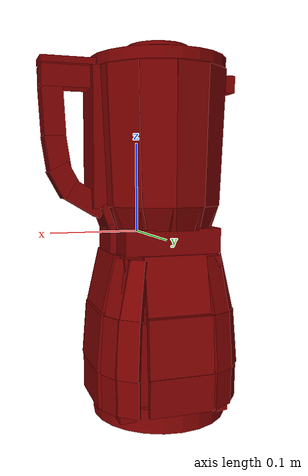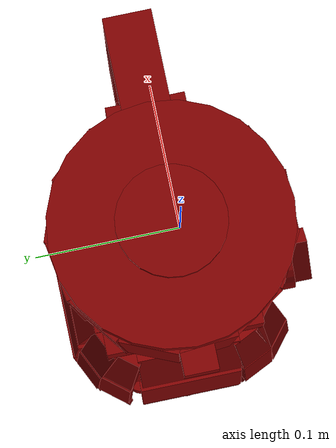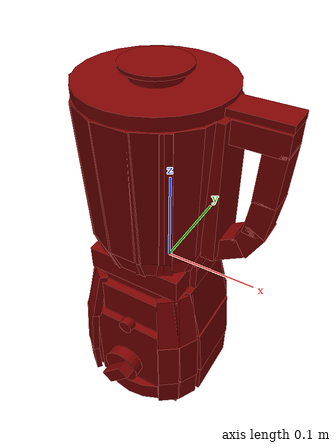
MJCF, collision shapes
<?xml version='1.0' encoding='UTF-8'?>
<mujoco model="model">
  <option timestep="0.002" gravity="0.0 0.0 -9.81"/>
  <compiler angle="radian"/>
  <asset>
    <mesh file="visuals/Blade001.obj" name="Blade001_vis"/>
    <mesh file="visuals/Body001.obj" name="Body001_vis"/>
    <mesh file="visuals/Body002.obj" name="Body002_vis"/>
    <mesh file="visuals/Button001.obj" name="Button001_vis"/>
    <mesh file="visuals/Jug001.obj" name="Jug001_vis"/>
    <mesh file="visuals/Jug001_Clear.obj" name="Jug001_Clear_vis"/>
    <mesh file="visuals/Knob001.obj" name="Knob001_vis"/>
    <mesh file="visuals/Lid001.obj" name="Lid001_vis"/>
    <texture file="visuals/T_BC001.png" name="Body001_material" type="2d"/>
    <material name="Body001_material" rgba="1 1 1 1.0" texture="Body001_material" shininess="0.141421377658844" specular="2"/>
    <texture file="visuals/T_BC001.png" name="Body002_material" type="2d"/>
    <material name="Body002_material" rgba="1 1 1 1.0" texture="Body002_material" shininess="0.141421377658844" specular="0.3103448502657381"/>
    <texture file="visuals/T_BC001.png" name="Button001_material" type="2d"/>
    <material name="Button001_material" rgba="1 1 1 1.0" texture="Button001_material" shininess="0.141421377658844" specular="0.3103448502657381"/>
    <texture file="visuals/T_BC001.png" name="Jug001_material" type="2d"/>
    <material name="Jug001_material" rgba="1 1 1 1.0" texture="Jug001_material" shininess="0.141421377658844" specular="0.3103448502657381"/>
    <texture file="visuals/T_BC001.png" name="Blade001_material" type="2d"/>
    <material name="Blade001_material" rgba="1 1 1 1.0" texture="Blade001_material" shininess="0.141421377658844" specular="1"/>
    <texture file="visuals/T_BC001.png" name="Jug001_Clear_material" type="2d"/>
    <material name="Jug001_Clear_material" rgba="1 1 1 0.75" texture="Jug001_Clear_material" shininess="0.141421377658844" specular="0.3103448502657381"/>
    <texture file="visuals/T_BC001.png" name="Lid001_material" type="2d"/>
    <material name="Lid001_material" rgba="1 1 1 1.0" texture="Lid001_material" shininess="0.141421377658844" specular="0.3103448502657381"/>
    <texture file="visuals/T_BC001.png" name="Knob001_material" type="2d"/>
    <material name="Knob001_material" rgba="1 1 1 1.0" texture="Knob001_material" shininess="0.141421377658844" specular="0.3103448502657381"/>
  </asset>
  <default>
    <default class="visual">
      <geom conaffinity="0" contype="0" group="1" type="mesh"/>
    </default>
    <default class="collision">
      <geom group="0" rgba="0.5 0 0 0.5"/>
    </default>
    <default class="spawn">
      <geom group="0" rgba="1 1 1 0.5" contype="0" conaffinity="0"/>
      <site group="0" rgba="1 1 1 0.5"/>
    </default>
    <default class="region">
      <geom group="1" conaffinity="0" contype="0" rgba="0 1 0 0"/>
    </default>
  </default>
  <worldbody>
    <body>
      <body name="object">
        <geom mesh="Body001_vis" type="mesh" solimp="0.998 0.998 0.001" solref="0.001 1" friction="0.95 0.3 0.1" class="visual" material="Body001_material"/>
        <geom class="collision" type="box" pos="-0.02125324 0.01088133 -0.14401975" size="0.06211252138018608 0.06211252138018608 0.052844371646642685" quat="1.0 0.0 0.0 0.0"/>
        <geom class="collision" type="box" pos="-0.08522475 0.01088133 -0.05209513" size="0.004011073149740696 0.035763565450906754 0.03144948557019234" quat="0.9938421845436096 0.0 0.11080476641654968 0.0"/>
        <geom class="collision" type="box" pos="-0.02125324 0.01253169 -0.05272835" size="0.05449920892715454 0.05350630357861519 0.029757967218756676" quat="1.0 0.0 0.0 0.0"/>
        <geom class="collision" type="box" pos="0.04336062 0.01172738 -0.05192510" size="0.003840292803943157 0.03641745075583458 0.031449493020772934" quat="7.503300025746285e-08 0.9938421845436096 -8.365526937836876e-09 0.11080476641654968"/>
        <geom class="collision" type="box" pos="-0.02137183 0.07543114 -0.05196477" size="0.0029528222512453794 0.03522942587733269 0.03144948557019234" quat="0.7027524709701538 0.07835067808628082 0.07835064828395844 -0.7027526497840881"/>
        <geom class="collision" type="box" pos="0.05458872 0.01172737 -0.11592519" size="0.002964968793094158 0.03641745075583458 0.031449493020772934" quat="7.506496757514469e-08 0.9992311000823975 6.5941954119352886e-09 0.03920683637261391"/>
        <geom class="collision" type="box" pos="0.05630803 0.01172737 -0.16708601" size="0.002594196703284979 0.036417338997125626 0.02055985853075981" quat="1.0 0.0 0.0 0.0"/>
        <geom class="collision" type="box" pos="-0.09705162 0.01172737 -0.11587368" size="0.003622443415224552 0.03641745075583458 0.031449493020772934" quat="0.03920678049325943 1.598352383780366e-07 -0.9992311000823975 -6.90521915203135e-08"/>
        <geom class="collision" type="box" pos="-0.09870201 0.01172737 -0.16709734" size="0.0027845080476254225 0.03641745075583458 0.020521236583590508" quat="0.00966708268970251 -1.6364300847726554e-07 0.9999532699584961 7.706934468387772e-08"/>
        <geom class="collision" type="box" pos="-0.02277744 0.08483383 -0.11601748" size="0.00343827111646533 0.03641745075583458 0.031449493020772934" quat="0.02772333472967148 -0.7065629363059998 -0.7065632939338684 -0.02772342599928379"/>
        <geom class="collision" type="box" pos="-0.02277743 0.08838206 -0.16709867" size="0.002852672478184104 0.03641745075583458 0.020521236583590508" quat="0.006835713982582092 0.7070736289024353 0.7070738673210144 -0.006835605949163437"/>
        <geom class="collision" type="box" pos="-0.08153833 -0.03278234 -0.05465136" size="0.004589538089931011 0.01190786249935627 0.031449489295482635" quat="0.9695470929145813 -0.02435024455189705 0.10809601098299026 0.21840497851371765"/>
        <geom class="collision" type="box" pos="-0.09143177 -0.03704512 -0.11586512" size="0.0037317133974283934 0.01212557777762413 0.031449493020772934" quat="0.03824836015701294 0.21958929300308228 -0.9748042821884155 0.008615943603217602"/>
        <geom class="collision" type="box" pos="-0.09264193 -0.03761946 -0.16709344" size="0.002582535147666931 0.01212557777762413 0.02052123472094536" quat="0.009430748410522938 -0.21974815428256989 0.9755087494850159 0.002124496502801776"/>
        <geom class="collision" type="box" pos="-0.07010913 -0.04668819 -0.05502695" size="0.0046595120802521706 0.01190786249935627 0.031449489295482635" quat="0.8976986408233643 -0.04754544049501419 0.10008556395769119 0.42644986510276794"/>
        <geom class="collision" type="box" pos="-0.07722282 -0.05479773 -0.11599470" size="0.003853235626593232 0.012125578708946705 0.031449493020772934" quat="0.03541398048400879 0.42876216769218445 -0.9025662541389465 0.01682324893772602"/>
        <geom class="collision" type="box" pos="-0.07845487 -0.05630942 -0.16707337" size="0.00331959524191916 0.012125578708946705 0.02052123472094536" quat="0.008731864392757416 -0.42907196283340454 0.9032185673713684 0.004148136358708143"/>
        <geom class="collision" type="box" pos="-0.06738924 0.06945065 -0.05475115" size="0.004136456176638603 0.01190786249935627 0.031449489295482635" quat="0.8400089740753174 0.05921720340847969 0.09365364164113998 -0.5311377048492432"/>
        <geom class="collision" type="box" pos="-0.07167629 0.07939523 -0.11589541" size="0.003345175413414836 0.01212557777762413 0.031449493020772934" quat="0.03313807025551796 -0.5340174436569214 -0.844563901424408 -0.020953278988599777"/>
        <geom class="collision" type="box" pos="-0.07241449 0.08095062 -0.16709338" size="0.0025793202221393585 0.012125578708946705 0.02052123472094536" quat="0.008170791901648045 0.5344034433364868 0.845174252986908 -0.005166299641132355"/>
        <geom class="collision" type="box" pos="-0.08074240 0.05781584 -0.05524313" size="0.0036779623478651047 0.01190786249935627 0.031449489295482635" quat="0.9363142251968384 0.0371515266597271 0.10439086705446243 -0.3332236111164093"/>
        <geom class="collision" type="box" pos="-0.08891952 0.06498460 -0.11606310" size="0.0029802799690514803 0.01212557777762413 0.031449493020772934" quat="0.036937300115823746 -0.33503010869026184 -0.9413913488388062 -0.013145629316568375"/>
        <geom class="collision" type="box" pos="-0.09023646 0.06605793 -0.16705169" size="0.0021978686563670635 0.012125578708946705 0.02052123472094536" quat="0.009107536636292934 0.3352721333503723 0.9420717358589172 -0.003241184400394559"/>
        <geom class="collision" type="box" pos="0.03684363 0.05762780 -0.05474049" size="0.004184875637292862 0.01190786249935627 0.031449489295482635" quat="0.21840499341487885 0.10809601098299026 0.02435024455189705 -0.9695470929145813"/>
        <geom class="collision" type="box" pos="0.04694131 0.06198750 -0.11587837" size="0.0035625386517494917 0.01212557777762413 0.031449493020772934" quat="-0.00861596129834652 0.9748042225837708 0.2195894867181778 0.038248416036367416"/>
        <geom class="collision" type="box" pos="0.04847466 0.06271523 -0.16709709" size="0.0027716634795069695 0.01212557777762413 0.02052123472094536" quat="0.0021244974341243505 0.9755087494850159 0.21974819898605347 -0.009430749341845512"/>
        <geom class="collision" type="box" pos="0.02545525 0.07131542 -0.05513982" size="0.004147086292505264 0.01190786249935627 0.031449489295482635" quat="0.42644959688186646 0.1000855416059494 0.04754539206624031 -0.8976987600326538"/>
        <geom class="collision" type="box" pos="0.03248353 0.07932018 -0.11604460" size="0.003216261975467205 0.01212557777762413 0.031449493020772934" quat="-0.016823291778564453 0.902566134929657 0.42876243591308594 0.035414036363363266"/>
        <geom class="collision" type="box" pos="0.03340824 0.08045476 -0.16705169" size="0.0021978686563670635 0.012125578708946705 0.02052123472094536" quat="0.004148142412304878 0.9032185077667236 0.42907214164733887 -0.008731872774660587"/>
        <geom class="collision" type="box" pos="0.02586229 -0.04727438 -0.05459217" size="0.004858327563852072 0.01190786249935627 0.031449489295482635" quat="0.45094969868659973 -0.09874163568019867 0.05027693882584572 0.885644793510437"/>
        <geom class="collision" type="box" pos="0.03213819 -0.05656704 -0.11580985" size="0.004437038209289312 0.012125576846301556 0.031449493020772934" quat="0.01778990589082241 0.890447199344635 -0.4533945620059967 0.03493843600153923"/>
        <geom class="collision" type="box" pos="0.03274391 -0.05739981 -0.16710106" size="0.0029759902972728014 0.012125578708946705 0.02052123472094536" quat="-0.004386311396956444 0.8910906910896301 -0.4537222981452942 -0.008614689111709595"/>
        <geom class="collision" type="box" pos="0.03759550 -0.03344194 -0.05494177" size="0.005046293139457703 0.01190786249935627 0.031449489295482635" quat="0.24495752155780792 -0.1073862612247467 0.02731061540544033 0.9631812572479248"/>
        <geom class="collision" type="box" pos="0.04700418 -0.03900359 -0.11595387" size="0.004374327603727579 0.01212557777762413 0.031449493020772934" quat="0.009663566015660763 0.9684039950370789 -0.2462853491306305 0.037997230887413025"/>
        <geom class="collision" type="box" pos="0.04818118 -0.03964368 -0.16707161" size="0.0032286769710481167 0.012125578708946705 0.02052123472094536" quat="-0.0023826216347515583 0.9691038727760315 -0.24646343290805817 -0.009368867613375187"/>
        <geom class="collision" type="box" pos="-0.02125324 -0.03720633 -0.05272835" size="0.03730533644556999 0.013394732028245926 0.021539075300097466" quat="1.0 0.0 0.0 0.0"/>
        <geom class="collision" type="box" pos="-0.02125324 -0.04060431 -0.14065818" size="0.0477716289460659 0.013394767418503761 0.05863378942012787" quat="1.0 0.0 0.0 0.0"/>
        <geom class="collision" type="cylinder" pos="-0.02317929 0.01278144 -0.19429973" size="0.07701032608747482 0.013251644559204578" quat="1.0 0.0 0.0 0.0"/>
        <body name="Body002">
          <geom mesh="Body002_vis" type="mesh" solimp="0.998 0.998 0.001" solref="0.001 1" friction="0.95 0.3 0.1" class="visual" material="Body002_material"/>
        </body>
        <body name="Button001">
          <joint axis="0.0 1.0 0.0" pos="-0.01904121 -0.05636680 -0.04347061" limited="true" name="Button001_joint" range="0.0 0.002" type="slide" damping="1" frictionloss="1" armature=".01" stiffness="0.05"/>
          <geom mesh="Button001_vis" type="mesh" solimp="0.998 0.998 0.001" solref="0.001 1" friction="0.95 0.3 0.1" class="visual" material="Button001_material"/>
          <geom class="collision" type="cylinder" pos="-0.01896529 -0.06192039 -0.06927289" size="0.008001218549907207 0.004626220557838678" quat="0.7071068286895752 0.7071067690849304 0.0 0.0"/>
        </body>
        <body name="Jug001">
          <joint axis="0.0 0.0 1.0" pos="0.01690692 0.01088085 0.07850766" limited="true" name="Jug001_joint" range="0.0 0.1" type="slide" damping="1" frictionloss="1" armature=".01" stiffness="0.05"/>
          <geom mesh="Jug001_vis" type="mesh" solimp="0.998 0.998 0.001" solref="0.001 1" friction="0.95 0.3 0.1" class="visual" material="Jug001_material"/>
          <geom class="collision" type="box" pos="-0.02157444 0.01190083 -0.00689259" size="0.05418802425265312 0.05418802425265312 0.013749852776527405" quat="1.0 0.0 0.0 0.0"/>
          <geom class="collision" type="cylinder" pos="-0.02033783 0.01155110 0.01156995" size="0.015780305489897728 0.008454694412648678" quat="1.0 0.0 0.0 0.0"/>
          <geom class="collision" type="box" pos="0.08402344 0.01095060 0.16750628" size="0.027125367894768715 0.015223980881273746 0.011412791907787323" quat="1.0 0.0 0.0 0.0"/>
          <geom class="collision" type="box" pos="0.09838337 0.01095060 0.13288766" size="0.027125367894768715 0.015223980881273746 0.011412791907787323" quat="0.726495087146759 0.0 -0.6871716380119324 0.0"/>
          <geom class="collision" type="box" pos="0.08612596 0.01095060 0.05867285" size="0.01660267449915409 0.015223980881273746 0.011412792839109898" quat="0.8605725169181824 0.0 -0.5093279480934143 0.0"/>
          <geom class="collision" type="box" pos="0.06229477 0.01095060 0.03795881" size="0.020991992205381393 0.015223980881273746 0.011412791907787323" quat="0.9642720222473145 0.0 -0.26491403579711914 0.0"/>
          <geom class="collision" type="box" pos="0.09439433 0.01095060 0.08750539" size="0.020037682726979256 0.015223980881273746 0.011412792839109898" quat="0.7592610120773315 0.0 -0.6507862210273743 0.0"/>
          <geom class="collision" type="box" pos="0.05137207 0.01075696 0.10376528" size="0.007271790876984596 0.02493887022137642 0.07511977106332779" quat="1.0 0.0 0.0 0.0"/>
          <geom class="collision" type="box" pos="0.04190674 0.01075696 0.01782715" size="0.016089878976345062 0.02493887022137642 0.0036388104781508446" quat="0.8233922719955444 0.0 -0.5674726366996765 0.0"/>
          <geom class="collision" type="box" pos="0.03728200 0.01075696 -0.00416618" size="0.0036560611333698034 0.02493887022137642 0.016093773767352104" quat="1.0 0.0 0.0 0.0"/>
          <geom class="collision" type="box" pos="-0.01976319 -0.05864468 0.10461194" size="0.018826475366950035 0.002732254099100828 0.0740242451429367" quat="0.999740719795227 0.022769350558519363 0.0 0.0"/>
          <geom class="collision" type="box" pos="-0.01976319 -0.05029354 0.01893365" size="0.018826471641659737 0.002732254099100828 0.013669250532984734" quat="0.9850984811782837 0.1719912439584732 0.0 0.0"/>
          <geom class="collision" type="box" pos="-0.05275797 -0.05110196 0.10461194" size="0.018826475366950035 0.002732254331931472 0.0740242451429367" quat="0.9696826338768005 0.02208472415804863 -0.005541310645639896 -0.2433045655488968"/>
          <geom class="collision" type="box" pos="-0.04881539 -0.04374006 0.01893365" size="0.018826471641659737 0.002732254099100828 0.013669250532984734" quat="0.9554806351661682 0.16682018339633942 -0.041857097297906876 -0.23974105715751648"/>
          <geom class="collision" type="box" pos="-0.07174823 -0.02364637 0.01893365" size="0.018826471641659737 0.002732254331931472 0.013669250532984734" quat="0.8656151294708252 0.1511302888393402 -0.08210128545761108 -0.47024402022361755"/>
          <geom class="collision" type="box" pos="-0.07875415 -0.02819157 0.10461194" size="0.018826475366950035 0.0027322538662701845 0.0740242451429367" quat="0.878481388092041 0.020007604733109474 -0.010869103483855724 -0.47723373770713806"/>
          <geom class="collision" type="box" pos="-0.09038664 0.00361699 0.10461194" size="0.018826475366950035 0.0027322538662701845 0.0740242451429367" quat="0.7358109354972839 0.016758248209953308 -0.01541435532271862 -0.6768041253089905"/>
          <geom class="collision" type="box" pos="-0.08206459 0.00431345 0.01893365" size="0.018826471641659737 0.002732254331931472 0.013669250532984734" quat="0.7250343561172485 0.12658587098121643 -0.11643454432487488 -0.6668914556503296"/>
          <geom class="collision" type="box" pos="-0.07793577 0.03386298 0.01893365" size="0.018826471641659737 0.002732254099100828 0.013669250532984734" quat="0.5405582189559937 0.09437765926122665 -0.1437840461730957 -0.823538601398468"/>
          <geom class="collision" type="box" pos="-0.08559779 0.03718490 0.10461194" size="0.018826475366950035 0.002732254099100828 0.0740242451429367" quat="0.5485929250717163 0.01249431911855936 -0.01903505250811577 -0.8357794880867004"/>
          <geom class="collision" type="box" pos="-0.06483591 0.06504173 0.10461194" size="0.018826475366950035 0.002732254099100828 0.0740242451429367" quat="0.3224077522754669 0.007342902012169361 -0.021552789956331253 -0.9463270306587219"/>
          <geom class="collision" type="box" pos="-0.05973734 0.05842764 0.01893365" size="0.018826471641659737 0.002732254099100828 0.013669250532984734" quat="0.31768572330474854 0.05546572059392929 -0.16280220448970795 -0.9324670433998108"/>
          <geom class="collision" type="box" pos="-0.03218979 0.07107461 0.01893365" size="0.018826471641659737 0.002732254331931472 0.013669250532984734" quat="0.07681706547737122 0.013411737978458405 -0.17146769165992737 -0.9820988178253174"/>
          <geom class="collision" type="box" pos="-0.03348825 0.07932418 0.10461194" size="0.018826475366950035 0.002732254099100828 0.0740242451429367" quat="0.0779588595032692 0.0017755276057869196 -0.02269996888935566 -0.9966965317726135"/>
          <geom class="collision" type="box" pos="0.00065384 0.07687992 0.10461194" size="0.018826475366950035 0.002732254099100828 0.0740242451429367" quat="0.1697516292333603 0.0038661323487758636 0.022438697516918182 0.9852238297462463"/>
          <geom class="collision" type="box" pos="-0.00214095 0.06901032 0.01893364" size="0.018826471641659737 0.002732254099100828 0.013669250532984734" quat="0.16726543009281158 0.0292033813893795 0.16949385404586792 0.970794141292572"/>
          <geom class="collision" type="box" pos="0.02331352 0.05282657 0.01893364" size="0.018826471641659737 0.002732254099100828 0.013669250532984734" quat="0.40139052271842957 0.07007995247840881 0.1570662409067154 0.899613618850708"/>
          <geom class="collision" type="box" pos="0.02952850 0.05840471 0.10461194" size="0.018826475366950035 0.002732254099100828 0.0740242451429367" quat="0.4073566794395447 0.009277631528675556 0.020793424919247627 0.9129852652549744"/>
          <geom class="collision" type="box" pos="0.04610360 0.02824147 0.10461194" size="0.018826475366950035 0.002732253633439541 0.0740242451429367" quat="0.6206277012825012 0.014134923927485943 0.01785062998533249 0.783774733543396"/>
          <geom class="collision" type="box" pos="0.03797486 0.02632703 0.01893364" size="0.018826471641659737 0.002732254099100828 0.013669250532984734" quat="0.6115379333496094 0.10677023231983185 0.13483738899230957 0.7722955346107483"/>
          <geom class="collision" type="box" pos="0.03808562 -0.00414316 0.01893364" size="0.018826471641659737 0.0027322538662701845 0.013669250532984734" quat="0.7845726609230042 0.13698099553585052 0.10400602221488953 0.5957052111625671"/>
          <geom class="collision" type="box" pos="0.04612978 -0.00638658 0.10461194" size="0.018826475366950035 0.002732254099100828 0.0740242451429367" quat="0.7962345480918884 0.018134426325559616 0.013768970035016537 0.6045594215393066"/>
          <geom class="collision" type="box" pos="0.02988999 -0.03626264 0.10461194" size="0.018826475366950035 0.002732254099100828 0.0740242451429367" quat="0.9198863506317139 0.020950598642230034 0.008917027153074741 0.3915235102176666"/>
          <geom class="collision" type="box" pos="0.02387142 -0.03047313 0.01893364" size="0.018826471641659737 0.002732254099100828 0.013669250532984734" quat="0.9064136147499084 0.158253476023674 0.06735609471797943 0.3857892155647278"/>
          <geom class="collision" type="box" pos="0.00700904 -0.04340503 0.01893364" size="0.018826471641659737 0.002732254099100828 0.013669250532984734" quat="0.9596347808837891 0.16754570603370667 0.03885239362716675 0.2225310206413269"/>
          <geom class="collision" type="box" pos="0.01068451 -0.05090387 0.10461194" size="0.018826475366950035 0.002732254099100828 0.0740242451429367" quat="0.9738985896110535 0.022180767729878426 0.005143522750586271 0.22583864629268646"/>
          <geom class="collision" type="box" pos="-0.10369241 0.01091495 0.16857263" size="0.00855797715485096 0.010857014916837215 0.009734752587974072" quat="1.0 0.0 0.0 0.0"/>
          <body name="Blade001">
            <joint axis="0.0 0.0 1.0" pos="-0.02028317 0.01142495 0.02878485" limited="false" name="Blade001_joint" range="0 360" type="hinge" damping="1" frictionloss="1" armature=".01" stiffness="0.05"/>
            <geom mesh="Blade001_vis" type="mesh" solimp="0.998 0.998 0.001" solref="0.001 1" friction="0.95 0.3 0.1" class="visual" material="Blade001_material"/>
            <geom class="collision" type="box" pos="-0.02003413 0.00995959 0.02333123" size="0.014491913840174675 0.017638348042964935 0.0007777379360049963" quat="1.0 0.0 0.0 0.0"/>
            <geom class="collision" type="box" pos="-0.02021896 0.04334842 0.02333123" size="0.0050698015838861465 0.016161534935235977 0.0007777377031743526" quat="1.0 0.0 0.0 0.0"/>
            <geom class="collision" type="box" pos="-0.02021896 -0.02087218 0.02333123" size="0.0050698015838861465 0.016161534935235977 0.0007777377031743526" quat="1.0 0.0 0.0 0.0"/>
            <geom class="collision" type="box" pos="-0.05190882 0.01121911 0.02832314" size="0.0050698015838861465 0.01778339222073555 0.0007777350838296115" quat="0.6976117491722107 -0.1154894158244133 0.1154894158244133 -0.6976118087768555"/>
            <geom class="collision" type="box" pos="0.01131646 0.01121911 0.02842481" size="0.0050698015838861465 0.01746790111064911 0.0007777350838296115" quat="0.11548933386802673 0.6976116299629211 0.6976119875907898 0.11548939347267151"/>
          </body>
          <body name="Jug001_Clear">
            <geom class="region" name="reg_int" type="box" pos="-0.020964015000000003 0.011551095 0.094590515" size="0.044041095 0.044667275000000006 0.060494704999999996"/>
            <geom mesh="Jug001_Clear_vis" type="mesh" solimp="0.998 0.998 0.001" solref="0.001 1" friction="0.95 0.3 0.1" class="visual" material="Jug001_Clear_material"/>
            <geom class="collision" type="box" pos="-0.01976319 -0.05864468 0.10461194" size="0.018826475366950035 0.002732254099100828 0.0740242451429367" quat="0.999740719795227 0.022769350558519363 0.0 0.0"/>
            <geom class="collision" type="box" pos="-0.01976319 -0.05029354 0.01893365" size="0.018826471641659737 0.002732254099100828 0.013669250532984734" quat="0.9850984811782837 0.1719912439584732 0.0 0.0"/>
            <geom class="collision" type="box" pos="-0.05275797 -0.05110196 0.10461194" size="0.018826475366950035 0.002732254331931472 0.0740242451429367" quat="0.9696826338768005 0.02208472415804863 -0.005541310645639896 -0.2433045655488968"/>
            <geom class="collision" type="box" pos="-0.04881539 -0.04374006 0.01893365" size="0.018826471641659737 0.002732254099100828 0.013669250532984734" quat="0.9554806351661682 0.16682018339633942 -0.041857097297906876 -0.23974105715751648"/>
            <geom class="collision" type="box" pos="-0.07174823 -0.02364637 0.01893365" size="0.018826471641659737 0.002732254331931472 0.013669250532984734" quat="0.8656151294708252 0.1511302888393402 -0.08210128545761108 -0.47024402022361755"/>
            <geom class="collision" type="box" pos="-0.07875415 -0.02819157 0.10461194" size="0.018826475366950035 0.0027322538662701845 0.0740242451429367" quat="0.878481388092041 0.020007604733109474 -0.010869103483855724 -0.47723373770713806"/>
            <geom class="collision" type="box" pos="-0.09038664 0.00361699 0.10461194" size="0.018826475366950035 0.0027322538662701845 0.0740242451429367" quat="0.7358109354972839 0.016758248209953308 -0.01541435532271862 -0.6768041253089905"/>
            <geom class="collision" type="box" pos="-0.08206459 0.00431345 0.01893365" size="0.018826471641659737 0.002732254331931472 0.013669250532984734" quat="0.7250343561172485 0.12658587098121643 -0.11643454432487488 -0.6668914556503296"/>
            <geom class="collision" type="box" pos="-0.07793577 0.03386298 0.01893365" size="0.018826471641659737 0.002732254099100828 0.013669250532984734" quat="0.5405582189559937 0.09437765926122665 -0.1437840461730957 -0.823538601398468"/>
            <geom class="collision" type="box" pos="-0.08559779 0.03718490 0.10461194" size="0.018826475366950035 0.002732254099100828 0.0740242451429367" quat="0.5485929250717163 0.01249431911855936 -0.01903505250811577 -0.8357794880867004"/>
            <geom class="collision" type="box" pos="-0.06483591 0.06504173 0.10461194" size="0.018826475366950035 0.002732254099100828 0.0740242451429367" quat="0.3224077522754669 0.007342902012169361 -0.021552789956331253 -0.9463270306587219"/>
            <geom class="collision" type="box" pos="-0.05973734 0.05842764 0.01893365" size="0.018826471641659737 0.002732254099100828 0.013669250532984734" quat="0.31768572330474854 0.05546572059392929 -0.16280220448970795 -0.9324670433998108"/>
            <geom class="collision" type="box" pos="-0.03218979 0.07107461 0.01893365" size="0.018826471641659737 0.002732254331931472 0.013669250532984734" quat="0.07681706547737122 0.013411737978458405 -0.17146769165992737 -0.9820988178253174"/>
            <geom class="collision" type="box" pos="-0.03348825 0.07932418 0.10461194" size="0.018826475366950035 0.002732254099100828 0.0740242451429367" quat="0.0779588595032692 0.0017755276057869196 -0.02269996888935566 -0.9966965317726135"/>
            <geom class="collision" type="box" pos="0.00065384 0.07687992 0.10461194" size="0.018826475366950035 0.002732254099100828 0.0740242451429367" quat="0.1697516292333603 0.0038661323487758636 0.022438697516918182 0.9852238297462463"/>
            <geom class="collision" type="box" pos="-0.00214095 0.06901032 0.01893364" size="0.018826471641659737 0.002732254099100828 0.013669250532984734" quat="0.16726543009281158 0.0292033813893795 0.16949385404586792 0.970794141292572"/>
            <geom class="collision" type="box" pos="0.02331352 0.05282657 0.01893364" size="0.018826471641659737 0.002732254099100828 0.013669250532984734" quat="0.40139052271842957 0.07007995247840881 0.1570662409067154 0.899613618850708"/>
            <geom class="collision" type="box" pos="0.02952850 0.05840471 0.10461194" size="0.018826475366950035 0.002732254099100828 0.0740242451429367" quat="0.4073566794395447 0.009277631528675556 0.020793424919247627 0.9129852652549744"/>
            <geom class="collision" type="box" pos="0.04610360 0.02824147 0.10461194" size="0.018826475366950035 0.002732253633439541 0.0740242451429367" quat="0.6206277012825012 0.014134923927485943 0.01785062998533249 0.783774733543396"/>
            <geom class="collision" type="box" pos="0.03797486 0.02632703 0.01893364" size="0.018826471641659737 0.002732254099100828 0.013669250532984734" quat="0.6115379333496094 0.10677023231983185 0.13483738899230957 0.7722955346107483"/>
            <geom class="collision" type="box" pos="0.03808562 -0.00414316 0.01893364" size="0.018826471641659737 0.0027322538662701845 0.013669250532984734" quat="0.7845726609230042 0.13698099553585052 0.10400602221488953 0.5957052111625671"/>
            <geom class="collision" type="box" pos="0.04612978 -0.00638658 0.10461194" size="0.018826475366950035 0.002732254099100828 0.0740242451429367" quat="0.7962345480918884 0.018134426325559616 0.013768970035016537 0.6045594215393066"/>
            <geom class="collision" type="box" pos="0.02988999 -0.03626264 0.10461194" size="0.018826475366950035 0.002732254099100828 0.0740242451429367" quat="0.9198863506317139 0.020950598642230034 0.008917027153074741 0.3915235102176666"/>
            <geom class="collision" type="box" pos="0.02387142 -0.03047313 0.01893364" size="0.018826471641659737 0.002732254099100828 0.013669250532984734" quat="0.9064136147499084 0.158253476023674 0.06735609471797943 0.3857892155647278"/>
            <geom class="collision" type="box" pos="0.00700904 -0.04340503 0.01893364" size="0.018826471641659737 0.002732254099100828 0.013669250532984734" quat="0.9596347808837891 0.16754570603370667 0.03885239362716675 0.2225310206413269"/>
            <geom class="collision" type="box" pos="0.01068451 -0.05090387 0.10461194" size="0.018826475366950035 0.002732254099100828 0.0740242451429367" quat="0.9738985896110535 0.022180767729878426 0.005143522750586271 0.22583864629268646"/>
            <geom class="collision" type="box" pos="-0.10369241 0.01091495 0.16857263" size="0.00855797715485096 0.010857014916837215 0.009734752587974072" quat="1.0 0.0 0.0 0.0"/>
          </body>
          <body name="Lid001">
            <joint axis="0.0 0.0 1.0" pos="0.00776766 0.01088247 0.18117738" limited="true" name="Lid001_joint" range="0.0 0.1" type="slide" damping="1" frictionloss="1" armature=".01" stiffness="0.05"/>
            <geom mesh="Lid001_vis" type="mesh" solimp="0.998 0.998 0.001" solref="0.001 1" friction="0.95 0.3 0.1" class="visual" material="Lid001_material"/>
            <geom class="collision" type="cylinder" pos="-0.02122061 0.01081978 0.18571812" size="0.07600142806768417 0.006195507012307644" quat="1.0 0.0 0.0 0.0"/>
            <geom class="collision" type="cylinder" pos="-0.02122061 0.01081978 0.16713786" size="0.06399042159318924 0.011746169999241829" quat="1.0 0.0 0.0 0.0"/>
            <geom class="collision" type="cylinder" pos="-0.02122061 0.01081978 0.20409691" size="0.03432024270296097 0.0019606673158705235" quat="1.0 0.0 0.0 0.0"/>
            <geom class="collision" type="box" pos="0.08023561 0.01095709 0.18399754" size="0.03143944963812828 0.015363558195531368 0.003451445372775197" quat="1.0 0.0 0.0 0.0"/>
            <geom class="collision" type="cylinder" pos="-0.02122061 0.01081978 0.19751430" size="0.02572418749332428 0.00496209692209959" quat="1.0 0.0 0.0 0.0"/>
          </body>
        </body>
        <body name="Knob001">
          <joint axis="0.0 1.0 0.0" pos="-0.02107783 -0.08739519 -0.13215874" limited="true" name="Knob001_joint" range="0.0 4.71238898038469" type="hinge" damping="0.05" armature="0.001"/>
          <geom mesh="Knob001_vis" type="mesh" solimp="0.998 0.998 0.001" solref="0.001 1" friction="0.95 0.3 0.1" class="visual" material="Knob001_material"/>
          <geom class="collision" type="cylinder" pos="-0.02124359 -0.07160480 -0.13222587" size="0.021976053714752197 0.006431171204894781" quat="0.7071068286895752 0.7071067690849304 0.0 0.0"/>
          <geom class="collision" type="box" pos="-0.02041542 -0.08555804 -0.13231350" size="0.01853242702782154 0.006443426012992859 0.007792641408741474" quat="0.9151340126991272 -9.15176663157614e-15 -0.4031498432159424 -5.416676529534925e-08"/>
        </body>
        <geom class="region" name="reg_main" type="box" pos="-0.026009295 0.010860124999999998 0.0" size="0.087241095 0.081966695 0.20858319"/>
      </body>
    </body>
  </worldbody>
  <actuator>
    <motor name="Button001_joint_actuator" joint="Button001_joint" gear="0.5"/>
    <motor name="Jug001_joint_actuator" joint="Jug001_joint" gear="100"/>
    <motor name="Knob001_joint_actuator" joint="Knob001_joint" gear="10"/>
    <motor name="Blade001_joint_actuator" joint="Blade001_joint" gear="20"/>
    <motor name="Lid001_joint_actuator" joint="Lid001_joint" gear="20"/>
  </actuator>
</mujoco>
